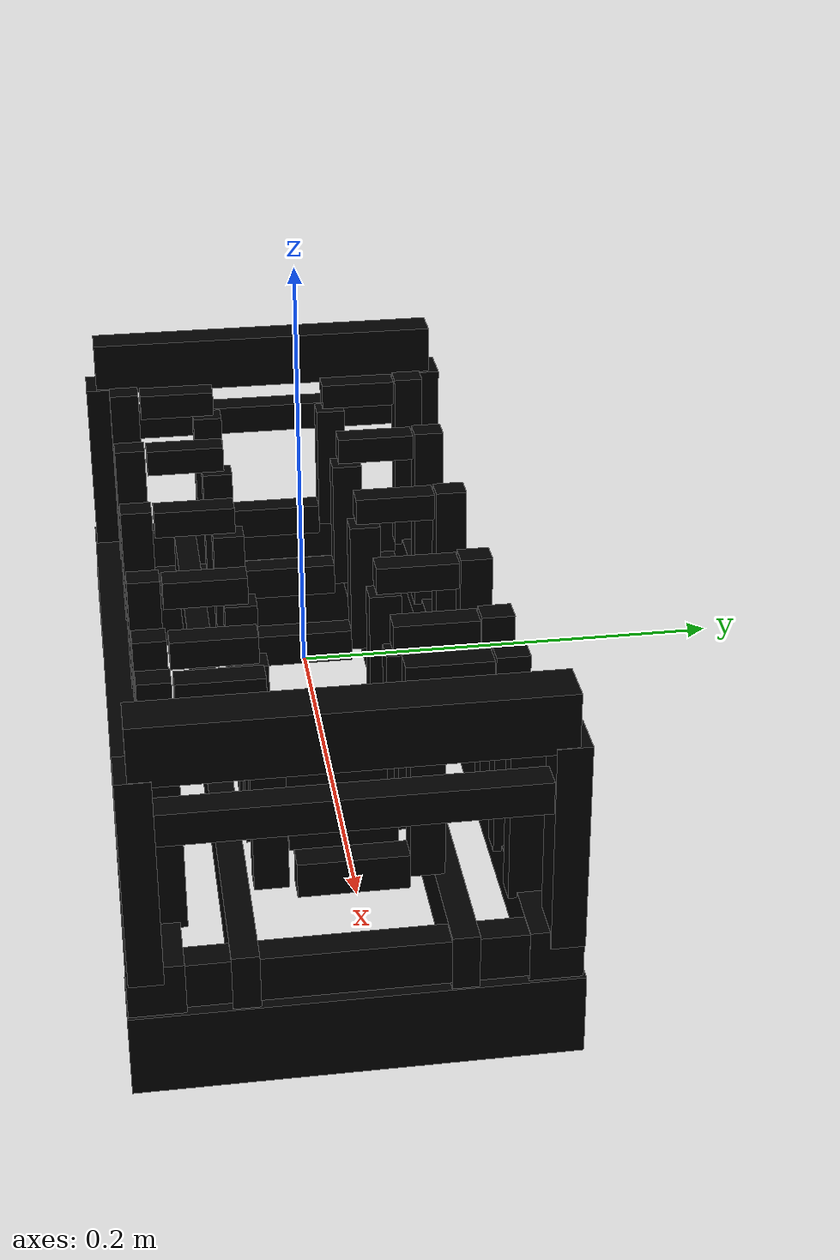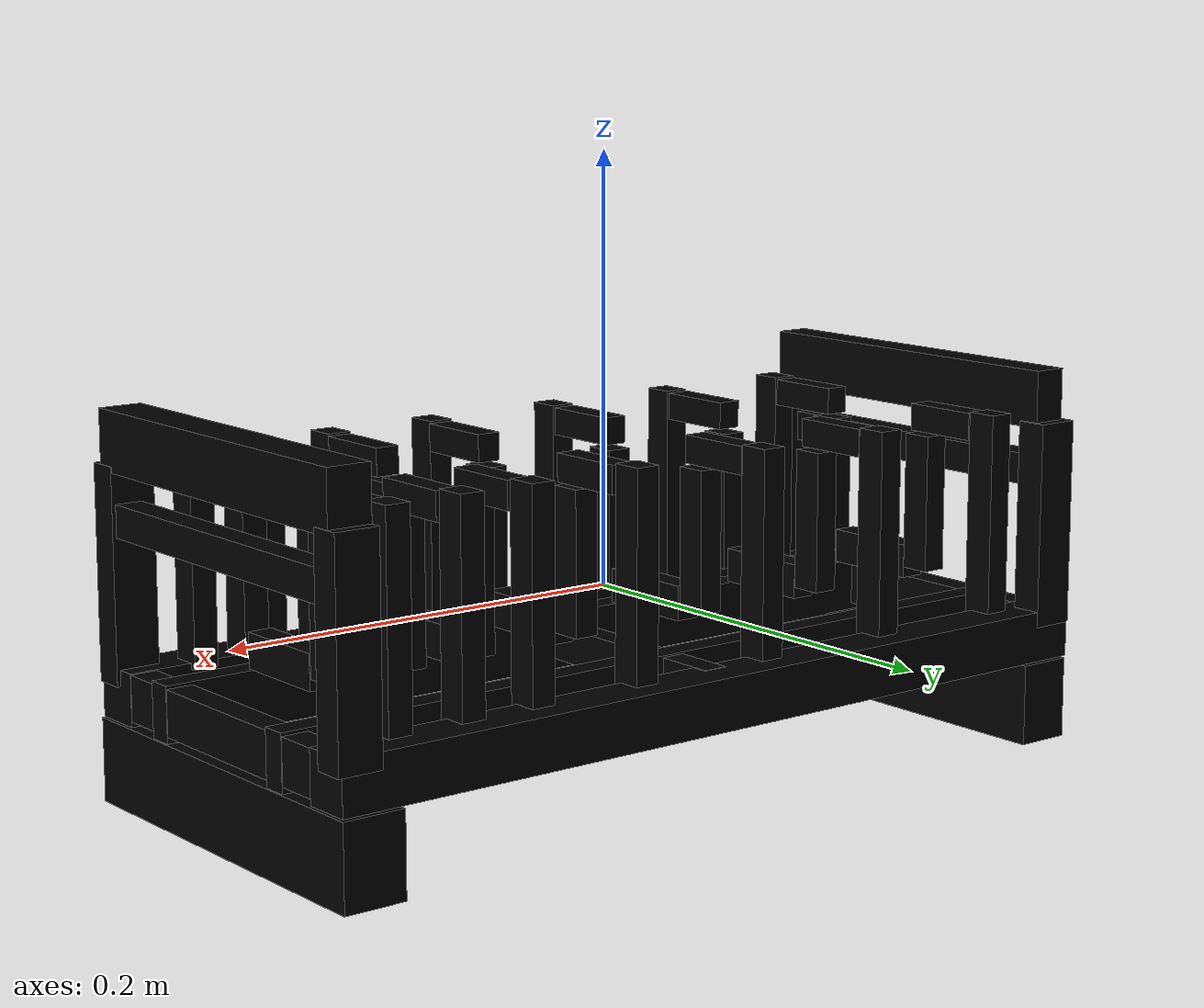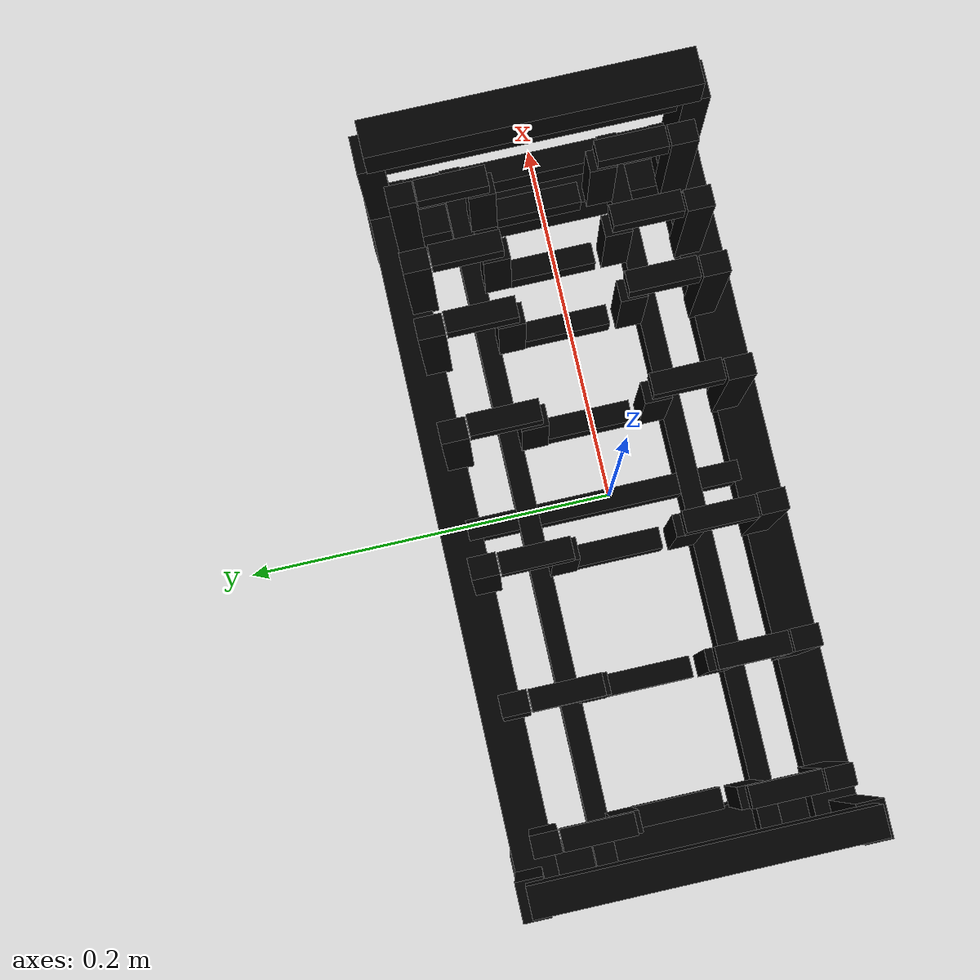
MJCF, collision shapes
<mujoco model="model">
  <option timestep="0.002" gravity="0.0 0.0 -9.81" />
  <compiler angle="radian" />
  <asset>
    <mesh file="visual/DishRack028.obj" name="DishRack028_vis" />
    <texture file="visual/T_BC001.png" name="DishRack028_material" type="2d" />
    <material name="DishRack028_material" rgba="1 1 1 1.0" texture="DishRack028_material" shininess="0.5" specular="0.33333333333333337" />
  </asset>
  <default>
    <default class="visual">
      <geom conaffinity="0" contype="0" group="2" type="mesh" density="0" />
    </default>
    <default class="collision">
      <geom group="3" rgba="1 1 1 0.25" density="0" solref="0.004 1" solimp="0.998 0.998 0.001" friction="0.5" />
    </default>
    <default class="spawn">
      <geom group="0" rgba="1 1 1 0.5" contype="0" conaffinity="0" />
      <site group="0" rgba="1 1 1 0.5" />
    </default>
    <default class="region">
      <geom group="1" conaffinity="0" contype="0" rgba="0 1 0 0" mass="0" />
    </default>
  </default>
  <worldbody>
    <body>
      <body name="object">
        <geom mesh="DishRack028_vis" type="mesh" class="visual" material="DishRack028_material" group="2" contype="0" conaffinity="0" density="0" mass="0.5" />
        <geom type="box" pos="0.20052344 -0.00032283 -0.03454295" size="0.006529608741402626 0.09070748835802078 0.010618925094604492" quat="1.0 0.0 0.0 0.0" class="collision" group="3" rgba="0 0 0 0" density="0" friction="0.5" solref="0.004 1" solimp="0.998 0.998 0.001" />
        <geom type="box" pos="-0.20393922 -0.00032283 -0.03454295" size="0.006529608741402626 0.09070748835802078 0.010618925094604492" quat="1.0 0.0 0.0 0.0" class="collision" group="3" rgba="0 0 0 0" density="0" friction="0.5" solref="0.004 1" solimp="0.998 0.998 0.001" />
        <geom type="box" pos="0.20052344 -0.00032283 0.04330331" size="0.006529608741402626 0.09070748835802078 0.007487610448151827" quat="1.0 0.0 0.0 0.0" class="collision" group="3" rgba="0 0 0 0" density="0" friction="0.5" solref="0.004 1" solimp="0.998 0.998 0.001" />
        <geom type="box" pos="-0.20132353 -0.00032283 0.04330331" size="0.006529608741402626 0.09070748835802078 0.007487610448151827" quat="1.0 0.0 0.0 0.0" class="collision" group="3" rgba="0 0 0 0" density="0" friction="0.5" solref="0.004 1" solimp="0.998 0.998 0.001" />
        <geom type="box" pos="-0.00111155 -0.08494039 -0.03562633" size="0.012265926226973534 0.20836371183395386 0.012117921374738216" quat="0.7071067094802856 0.0 0.0 0.7071068286895752" class="collision" group="3" rgba="0 0 0 0" density="0" friction="0.5" solref="0.004 1" solimp="0.998 0.998 0.001" />
        <geom type="box" pos="-0.00111155 0.08400316 -0.03562633" size="0.011705753393471241 0.20836371183395386 0.012117921374738216" quat="0.7071067094802856 0.0 0.0 0.7071068286895752" class="collision" group="3" rgba="0 0 0 0" density="0" friction="0.5" solref="0.004 1" solimp="0.998 0.998 0.001" />
        <geom type="box" pos="-0.00111155 -0.04757229 -0.03562633" size="0.005966539494693279 0.20836371183395386 0.013164927251636982" quat="0.7071067094802856 0.0 0.0 0.7071068286895752" class="collision" group="3" rgba="0 0 0 0" density="0" friction="0.5" solref="0.004 1" solimp="0.998 0.998 0.001" />
        <geom type="box" pos="-0.00111155 0.04509997 -0.03562633" size="0.005966539494693279 0.20836371183395386 0.013164927251636982" quat="0.7071067094802856 0.0 0.0 0.7071068286895752" class="collision" group="3" rgba="0 0 0 0" density="0" friction="0.5" solref="0.004 1" solimp="0.998 0.998 0.001" />
        <geom type="box" pos="-0.17393830 -0.07687265 0.02313735" size="0.007471673656255007 0.005916337016969919 0.04932975396513939" quat="0.7071067094802856 0.0 0.0 0.7071068286895752" class="collision" group="3" rgba="0 0 0 0" density="0" friction="0.5" solref="0.004 1" solimp="0.998 0.998 0.001" />
        <geom type="box" pos="-0.10163800 -0.07687265 0.02313735" size="0.007471673656255007 0.005916337016969919 0.04932975396513939" quat="0.7071067094802856 0.0 0.0 0.7071068286895752" class="collision" group="3" rgba="0 0 0 0" density="0" friction="0.5" solref="0.004 1" solimp="0.998 0.998 0.001" />
        <geom type="box" pos="-0.02988899 -0.07687265 0.02313735" size="0.007471673656255007 0.005916337016969919 0.04932975396513939" quat="0.7071067094802856 0.0 0.0 0.7071068286895752" class="collision" group="3" rgba="0 0 0 0" density="0" friction="0.5" solref="0.004 1" solimp="0.998 0.998 0.001" />
        <geom type="box" pos="0.04227950 -0.07687265 0.02313735" size="0.007471673656255007 0.005916337016969919 0.04932975396513939" quat="0.7071067094802856 0.0 0.0 0.7071068286895752" class="collision" group="3" rgba="0 0 0 0" density="0" friction="0.5" solref="0.004 1" solimp="0.998 0.998 0.001" />
        <geom type="box" pos="0.09831718 -0.07687265 0.02313735" size="0.007471673656255007 0.005916337016969919 0.04932975396513939" quat="0.7071067094802856 0.0 0.0 0.7071068286895752" class="collision" group="3" rgba="0 0 0 0" density="0" friction="0.5" solref="0.004 1" solimp="0.998 0.998 0.001" />
        <geom type="box" pos="0.13440347 -0.07687265 0.02313735" size="0.007471673656255007 0.005916337016969919 0.04932975396513939" quat="0.7071067094802856 0.0 0.0 0.7071068286895752" class="collision" group="3" rgba="0 0 0 0" density="0" friction="0.5" solref="0.004 1" solimp="0.998 0.998 0.001" />
        <geom type="box" pos="0.17077012 -0.07687265 0.02313735" size="0.007471673656255007 0.005916337016969919 0.04932975396513939" quat="0.7071067094802856 0.0 0.0 0.7071068286895752" class="collision" group="3" rgba="0 0 0 0" density="0" friction="0.5" solref="0.004 1" solimp="0.998 0.998 0.001" />
        <geom type="box" pos="-0.17393830 0.07591502 0.02313735" size="0.007471673656255007 0.005916337016969919 0.04932975396513939" quat="0.7071067094802856 0.0 0.0 0.7071068286895752" class="collision" group="3" rgba="0 0 0 0" density="0" friction="0.5" solref="0.004 1" solimp="0.998 0.998 0.001" />
        <geom type="box" pos="-0.10163800 0.07591502 0.02313735" size="0.007471673656255007 0.005916337016969919 0.04932975396513939" quat="0.7071067094802856 0.0 0.0 0.7071068286895752" class="collision" group="3" rgba="0 0 0 0" density="0" friction="0.5" solref="0.004 1" solimp="0.998 0.998 0.001" />
        <geom type="box" pos="-0.02988899 0.07591502 0.02313735" size="0.007471673656255007 0.005916337016969919 0.04932975396513939" quat="0.7071067094802856 0.0 0.0 0.7071068286895752" class="collision" group="3" rgba="0 0 0 0" density="0" friction="0.5" solref="0.004 1" solimp="0.998 0.998 0.001" />
        <geom type="box" pos="0.04227950 0.07591502 0.02313735" size="0.007471673656255007 0.005916337016969919 0.04932975396513939" quat="0.7071067094802856 0.0 0.0 0.7071068286895752" class="collision" group="3" rgba="0 0 0 0" density="0" friction="0.5" solref="0.004 1" solimp="0.998 0.998 0.001" />
        <geom type="box" pos="0.09831718 0.07591502 0.02313735" size="0.007471673656255007 0.005916337016969919 0.04932975396513939" quat="0.7071067094802856 0.0 0.0 0.7071068286895752" class="collision" group="3" rgba="0 0 0 0" density="0" friction="0.5" solref="0.004 1" solimp="0.998 0.998 0.001" />
        <geom type="box" pos="0.13440347 0.07591502 0.02313735" size="0.007471673656255007 0.005916337016969919 0.04932975396513939" quat="0.7071067094802856 0.0 0.0 0.7071068286895752" class="collision" group="3" rgba="0 0 0 0" density="0" friction="0.5" solref="0.004 1" solimp="0.998 0.998 0.001" />
        <geom type="box" pos="0.17077012 0.07591502 0.02313735" size="0.007471673656255007 0.005916337016969919 0.04932975396513939" quat="0.7071067094802856 0.0 0.0 0.7071068286895752" class="collision" group="3" rgba="0 0 0 0" density="0" friction="0.5" solref="0.004 1" solimp="0.998 0.998 0.001" />
        <geom type="box" pos="-0.17393830 0.04843438 0.06512193" size="0.01929853856563568 0.005916337016969919 0.006554272025823593" quat="0.7071067094802856 0.0 0.0 0.7071068286895752" class="collision" group="3" rgba="0 0 0 0" density="0" friction="0.5" solref="0.004 1" solimp="0.998 0.998 0.001" />
        <geom type="box" pos="-0.10192460 0.04843438 0.06512193" size="0.01929853856563568 0.005916337016969919 0.006554272025823593" quat="0.7071067094802856 0.0 0.0 0.7071068286895752" class="collision" group="3" rgba="0 0 0 0" density="0" friction="0.5" solref="0.004 1" solimp="0.998 0.998 0.001" />
        <geom type="box" pos="-0.03030705 0.04843438 0.06512193" size="0.01929853856563568 0.005916337016969919 0.006554272025823593" quat="0.7071067094802856 0.0 0.0 0.7071068286895752" class="collision" group="3" rgba="0 0 0 0" density="0" friction="0.5" solref="0.004 1" solimp="0.998 0.998 0.001" />
        <geom type="box" pos="0.04336178 0.04843438 0.06512193" size="0.01929853856563568 0.005916337016969919 0.006554272025823593" quat="0.7071067094802856 0.0 0.0 0.7071068286895752" class="collision" group="3" rgba="0 0 0 0" density="0" friction="0.5" solref="0.004 1" solimp="0.998 0.998 0.001" />
        <geom type="box" pos="0.09909142 0.04843438 0.06512193" size="0.01929853856563568 0.005916337016969919 0.006554272025823593" quat="0.7071067094802856 0.0 0.0 0.7071068286895752" class="collision" group="3" rgba="0 0 0 0" density="0" friction="0.5" solref="0.004 1" solimp="0.998 0.998 0.001" />
        <geom type="box" pos="0.13544502 0.04843438 0.06512193" size="0.01929853856563568 0.005916337016969919 0.006554272025823593" quat="0.7071067094802856 0.0 0.0 0.7071068286895752" class="collision" group="3" rgba="0 0 0 0" density="0" friction="0.5" solref="0.004 1" solimp="0.998 0.998 0.001" />
        <geom type="box" pos="0.17120553 0.04843438 0.06512193" size="0.01929853856563568 0.005916337016969919 0.006554272025823593" quat="0.7071067094802856 0.0 0.0 0.7071068286895752" class="collision" group="3" rgba="0 0 0 0" density="0" friction="0.5" solref="0.004 1" solimp="0.998 0.998 0.001" />
        <geom type="box" pos="-0.17393830 -0.04908519 0.06512193" size="0.01929853856563568 0.005916337016969919 0.006554272025823593" quat="0.7071067094802856 0.0 0.0 0.7071068286895752" class="collision" group="3" rgba="0 0 0 0" density="0" friction="0.5" solref="0.004 1" solimp="0.998 0.998 0.001" />
        <geom type="box" pos="-0.10192460 -0.04908519 0.06512193" size="0.01929853856563568 0.005916337016969919 0.006554272025823593" quat="0.7071067094802856 0.0 0.0 0.7071068286895752" class="collision" group="3" rgba="0 0 0 0" density="0" friction="0.5" solref="0.004 1" solimp="0.998 0.998 0.001" />
        <geom type="box" pos="-0.03030705 -0.04908519 0.06512193" size="0.01929853856563568 0.005916337016969919 0.006554272025823593" quat="0.7071067094802856 0.0 0.0 0.7071068286895752" class="collision" group="3" rgba="0 0 0 0" density="0" friction="0.5" solref="0.004 1" solimp="0.998 0.998 0.001" />
        <geom type="box" pos="0.04336178 -0.04908519 0.06512193" size="0.01929853856563568 0.005916337016969919 0.006554272025823593" quat="0.7071067094802856 0.0 0.0 0.7071068286895752" class="collision" group="3" rgba="0 0 0 0" density="0" friction="0.5" solref="0.004 1" solimp="0.998 0.998 0.001" />
        <geom type="box" pos="0.09909142 -0.04908519 0.06512193" size="0.01929853856563568 0.005916337016969919 0.006554272025823593" quat="0.7071067094802856 0.0 0.0 0.7071068286895752" class="collision" group="3" rgba="0 0 0 0" density="0" friction="0.5" solref="0.004 1" solimp="0.998 0.998 0.001" />
        <geom type="box" pos="0.13544502 -0.04908519 0.06512193" size="0.01929853856563568 0.005916337016969919 0.006554272025823593" quat="0.7071067094802856 0.0 0.0 0.7071068286895752" class="collision" group="3" rgba="0 0 0 0" density="0" friction="0.5" solref="0.004 1" solimp="0.998 0.998 0.001" />
        <geom type="box" pos="0.17120553 -0.04908519 0.06512193" size="0.01929853856563568 0.005916337016969919 0.006554272025823593" quat="0.7071067094802856 0.0 0.0 0.7071068286895752" class="collision" group="3" rgba="0 0 0 0" density="0" friction="0.5" solref="0.004 1" solimp="0.998 0.998 0.001" />
        <geom type="box" pos="-0.17393830 -0.03325328 0.02313735" size="0.007471673656255007 0.005916337016969919 0.033468808978796005" quat="0.7071067094802856 0.0 0.0 0.7071068286895752" class="collision" group="3" rgba="0 0 0 0" density="0" friction="0.5" solref="0.004 1" solimp="0.998 0.998 0.001" />
        <geom type="box" pos="-0.10163800 -0.03325328 0.02313735" size="0.007471673656255007 0.005916337016969919 0.033468808978796005" quat="0.7071067094802856 0.0 0.0 0.7071068286895752" class="collision" group="3" rgba="0 0 0 0" density="0" friction="0.5" solref="0.004 1" solimp="0.998 0.998 0.001" />
        <geom type="box" pos="-0.02988899 -0.03325328 0.02313735" size="0.007471673656255007 0.005916337016969919 0.033468808978796005" quat="0.7071067094802856 0.0 0.0 0.7071068286895752" class="collision" group="3" rgba="0 0 0 0" density="0" friction="0.5" solref="0.004 1" solimp="0.998 0.998 0.001" />
        <geom type="box" pos="0.04227950 -0.03325328 0.02313735" size="0.007471673656255007 0.005916337016969919 0.033468808978796005" quat="0.7071067094802856 0.0 0.0 0.7071068286895752" class="collision" group="3" rgba="0 0 0 0" density="0" friction="0.5" solref="0.004 1" solimp="0.998 0.998 0.001" />
        <geom type="box" pos="0.09831718 -0.03325328 0.02313735" size="0.007471673656255007 0.005916337016969919 0.033468808978796005" quat="0.7071067094802856 0.0 0.0 0.7071068286895752" class="collision" group="3" rgba="0 0 0 0" density="0" friction="0.5" solref="0.004 1" solimp="0.998 0.998 0.001" />
        <geom type="box" pos="0.13440347 -0.03325328 0.02313735" size="0.007471673656255007 0.005916337016969919 0.033468808978796005" quat="0.7071067094802856 0.0 0.0 0.7071068286895752" class="collision" group="3" rgba="0 0 0 0" density="0" friction="0.5" solref="0.004 1" solimp="0.998 0.998 0.001" />
        <geom type="box" pos="0.17077012 -0.03325328 0.02313735" size="0.007471673656255007 0.005916337016969919 0.033468808978796005" quat="0.7071067094802856 0.0 0.0 0.7071068286895752" class="collision" group="3" rgba="0 0 0 0" density="0" friction="0.5" solref="0.004 1" solimp="0.998 0.998 0.001" />
        <geom type="box" pos="-0.17393830 0.03335000 0.02313735" size="0.007471673656255007 0.005916337016969919 0.033468808978796005" quat="0.7071067094802856 0.0 0.0 0.7071068286895752" class="collision" group="3" rgba="0 0 0 0" density="0" friction="0.5" solref="0.004 1" solimp="0.998 0.998 0.001" />
        <geom type="box" pos="-0.10163800 0.03335000 0.02313735" size="0.007471673656255007 0.005916337016969919 0.033468808978796005" quat="0.7071067094802856 0.0 0.0 0.7071068286895752" class="collision" group="3" rgba="0 0 0 0" density="0" friction="0.5" solref="0.004 1" solimp="0.998 0.998 0.001" />
        <geom type="box" pos="-0.02988899 0.03335000 0.02313735" size="0.007471673656255007 0.005916337016969919 0.033468808978796005" quat="0.7071067094802856 0.0 0.0 0.7071068286895752" class="collision" group="3" rgba="0 0 0 0" density="0" friction="0.5" solref="0.004 1" solimp="0.998 0.998 0.001" />
        <geom type="box" pos="0.04227950 0.03335000 0.02313735" size="0.007471673656255007 0.005916337016969919 0.033468808978796005" quat="0.7071067094802856 0.0 0.0 0.7071068286895752" class="collision" group="3" rgba="0 0 0 0" density="0" friction="0.5" solref="0.004 1" solimp="0.998 0.998 0.001" />
        <geom type="box" pos="0.09831718 0.03335000 0.02313735" size="0.007471673656255007 0.005916337016969919 0.033468808978796005" quat="0.7071067094802856 0.0 0.0 0.7071068286895752" class="collision" group="3" rgba="0 0 0 0" density="0" friction="0.5" solref="0.004 1" solimp="0.998 0.998 0.001" />
        <geom type="box" pos="0.13440347 0.03335000 0.02313735" size="0.007471673656255007 0.005916337016969919 0.033468808978796005" quat="0.7071067094802856 0.0 0.0 0.7071068286895752" class="collision" group="3" rgba="0 0 0 0" density="0" friction="0.5" solref="0.004 1" solimp="0.998 0.998 0.001" />
        <geom type="box" pos="0.17077012 0.03335000 0.02313735" size="0.007471673656255007 0.005916337016969919 0.033468808978796005" quat="0.7071067094802856 0.0 0.0 0.7071068286895752" class="collision" group="3" rgba="0 0 0 0" density="0" friction="0.5" solref="0.004 1" solimp="0.998 0.998 0.001" />
        <geom type="box" pos="-0.17393830 0.00169406 -0.00749391" size="0.024141866713762283 0.005916337016969919 0.008189251646399498" quat="0.7071067094802856 0.0 0.0 0.7071068286895752" class="collision" group="3" rgba="0 0 0 0" density="0" friction="0.5" solref="0.004 1" solimp="0.998 0.998 0.001" />
        <geom type="box" pos="-0.10127959 0.00169406 -0.00749391" size="0.024141866713762283 0.005916337016969919 0.008189251646399498" quat="0.7071067094802856 0.0 0.0 0.7071068286895752" class="collision" group="3" rgba="0 0 0 0" density="0" friction="0.5" solref="0.004 1" solimp="0.998 0.998 0.001" />
        <geom type="box" pos="-0.02884963 0.00169406 -0.00749391" size="0.024141866713762283 0.005916337016969919 0.008189251646399498" quat="0.7071067094802856 0.0 0.0 0.7071068286895752" class="collision" group="3" rgba="0 0 0 0" density="0" friction="0.5" solref="0.004 1" solimp="0.998 0.998 0.001" />
        <geom type="box" pos="0.04366593 0.00169406 -0.00749391" size="0.024141866713762283 0.005916337016969919 0.008189251646399498" quat="0.7071067094802856 0.0 0.0 0.7071068286895752" class="collision" group="3" rgba="0 0 0 0" density="0" friction="0.5" solref="0.004 1" solimp="0.998 0.998 0.001" />
        <geom type="box" pos="0.09947092 0.00169406 -0.00749391" size="0.024141866713762283 0.0055816383101046085 0.008189251646399498" quat="0.7071067094802856 0.0 0.0 0.7071068286895752" class="collision" group="3" rgba="0 0 0 0" density="0" friction="0.5" solref="0.004 1" solimp="0.998 0.998 0.001" />
        <geom type="box" pos="0.13544171 0.00169406 -0.00749391" size="0.024141866713762283 0.005916337016969919 0.008189251646399498" quat="0.7071067094802856 0.0 0.0 0.7071068286895752" class="collision" group="3" rgba="0 0 0 0" density="0" friction="0.5" solref="0.004 1" solimp="0.998 0.998 0.001" />
        <geom type="box" pos="0.17126172 0.00169406 -0.00749391" size="0.024141866713762283 0.005916337016969919 0.008189251646399498" quat="0.7071067094802856 0.0 0.0 0.7071068286895752" class="collision" group="3" rgba="0 0 0 0" density="0" friction="0.5" solref="0.004 1" solimp="0.998 0.998 0.001" />
        <geom type="box" pos="-0.19969583 -0.08891592 0.01826139" size="0.007471673656255007 0.010534544475376606 0.04932975396513939" quat="0.7071067094802856 0.0 0.0 0.7071068286895752" class="collision" group="3" rgba="0 0 0 0" density="0" friction="0.5" solref="0.004 1" solimp="0.998 0.998 0.001" />
        <geom type="box" pos="-0.19969583 0.08829165 0.01826139" size="0.007471673656255007 0.010534544475376606 0.04932975396513939" quat="0.7071067094802856 0.0 0.0 0.7071068286895752" class="collision" group="3" rgba="0 0 0 0" density="0" friction="0.5" solref="0.004 1" solimp="0.998 0.998 0.001" />
        <geom type="box" pos="-0.19907614 -0.00032283 0.07865819" size="0.00844332855194807 0.09070748835802078 0.013800729997456074" quat="1.0 0.0 0.0 0.0" class="collision" group="3" rgba="0 0 0 0" density="0" friction="0.5" solref="0.004 1" solimp="0.998 0.998 0.001" />
        <geom type="box" pos="0.19818907 -0.00032283 0.07865819" size="0.01038532517850399 0.09070748835802078 0.013800729997456074" quat="1.0 0.0 0.0 0.0" class="collision" group="3" rgba="0 0 0 0" density="0" friction="0.5" solref="0.004 1" solimp="0.998 0.998 0.001" />
        <geom type="box" pos="0.19835722 -0.08891592 0.01826139" size="0.007471673656255007 0.010534544475376606 0.04932975396513939" quat="0.7071067094802856 0.0 0.0 0.7071068286895752" class="collision" group="3" rgba="0 0 0 0" density="0" friction="0.5" solref="0.004 1" solimp="0.998 0.998 0.001" />
        <geom type="box" pos="0.19835722 0.08829165 0.01826139" size="0.007471673656255007 0.010534544475376606 0.04932975396513939" quat="0.7071067094802856 0.0 0.0 0.7071068286895752" class="collision" group="3" rgba="0 0 0 0" density="0" friction="0.5" solref="0.004 1" solimp="0.998 0.998 0.001" />
        <geom type="box" pos="0.19319708 -0.00032283 -0.06774363" size="0.014889848418533802 0.09741415828466415 0.01943475939333439" quat="1.0 0.0 0.0 0.0" class="collision" group="3" rgba="0 0 0 0" density="0" friction="0.5" solref="0.004 1" solimp="0.998 0.998 0.001" />
        <geom type="box" pos="-0.19387253 -0.00032283 -0.06774363" size="0.013459756970405579 0.09741415828466415 0.01943475939333439" quat="1.0 0.0 0.0 0.0" class="collision" group="3" rgba="0 0 0 0" density="0" friction="0.5" solref="0.004 1" solimp="0.998 0.998 0.001" />
        <geom type="box" pos="0.00085925 0.00169406 -0.03148853" size="0.07846435159444809 0.005916337016969919 0.008189251646399498" quat="0.7071067094802856 0.0 0.0 0.7071068286895752" class="collision" group="3" rgba="0 0 0 0" density="0" friction="0.5" solref="0.004 1" solimp="0.998 0.998 0.001" />
        <geom class="region" name="reg_int_1" type="box" pos="-0.065619835 -0.003519225000000001 0.07918717" size="0.030078145 0.085144555 0.10215073999999999" />
        <geom class="region" name="reg_int_0" type="box" pos="-0.13716874 -0.003526185000000001 0.07918717" size="0.03006612000000001 0.085151515 0.10215073999999999" />
        <geom class="region" name="reg_int_2" type="box" pos="0.007220585 -0.003519225000000001 0.07918717" size="0.030066125 0.085144555 0.10215073999999999" />
        <geom class="region" name="reg_int_3" type="box" pos="0.07038277 -0.003519225000000001 0.07918717" size="0.021354159999999997 0.085144555 0.10215073999999999" />
        <geom class="region" name="reg_int_4" type="box" pos="0.116431485 -0.003519225000000001 0.07918717" size="0.012228054999999995 0.085144555 0.10215073999999999" />
        <geom class="region" name="reg_int_5" type="box" pos="0.153069415 -0.003519225000000001 0.07918717" size="0.01209130500000001 0.085144555 0.10215073999999999" />
        <geom size="0.20915748 0.0995988 0.08963892" pos="0.0 -0.0 0.0" name="reg_bbox" class="region" type="box" quat="1.0 0.0 0.0 0.0" />
      </body>
    </body>
  </worldbody>
  <actuator />
</mujoco>
